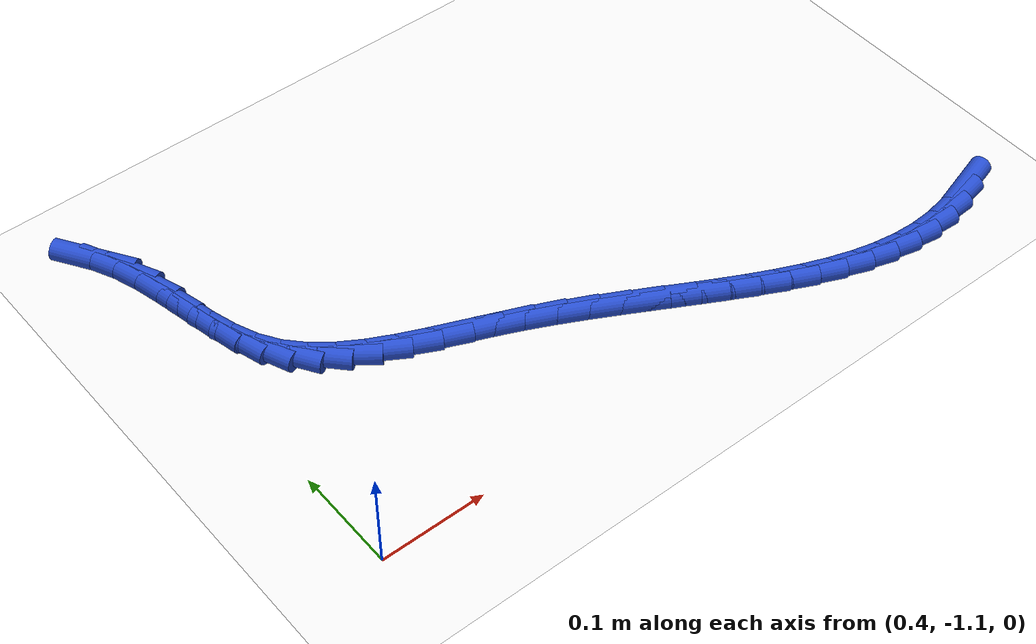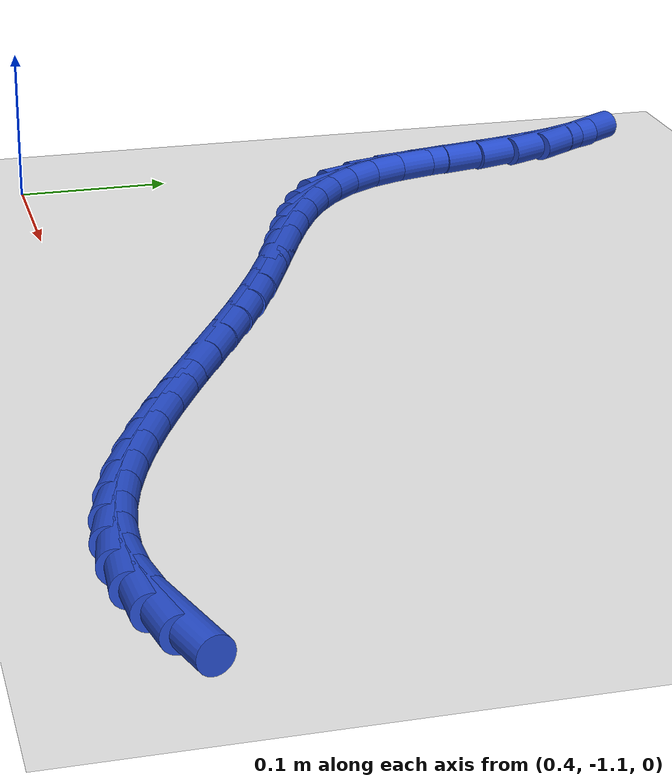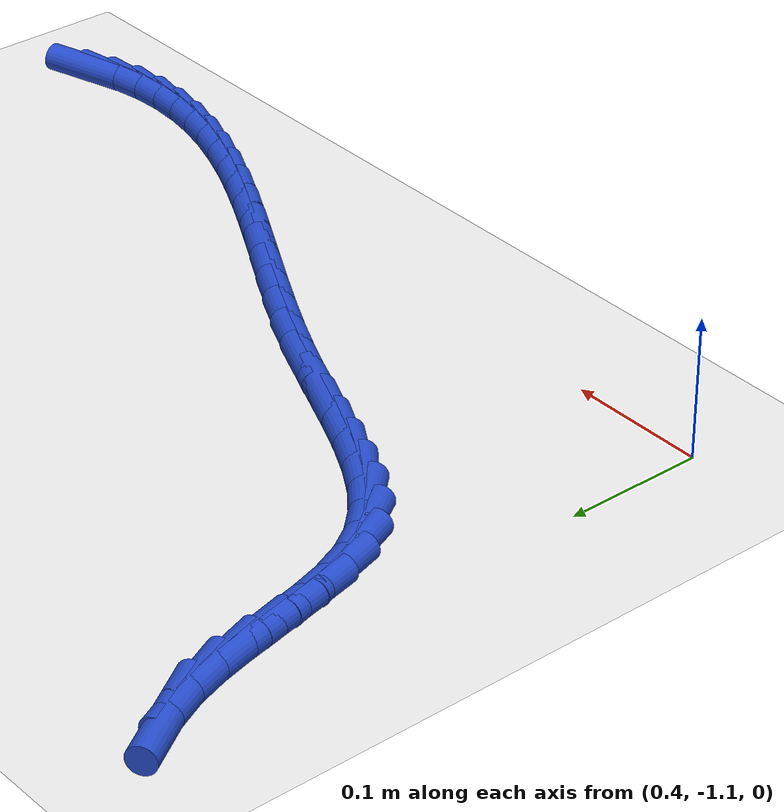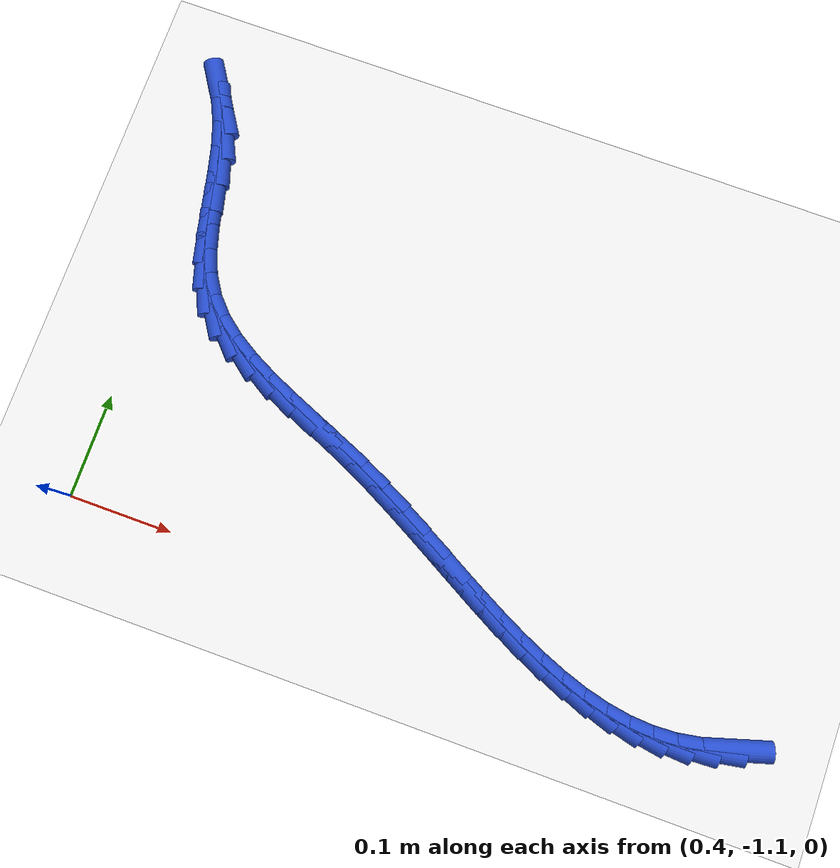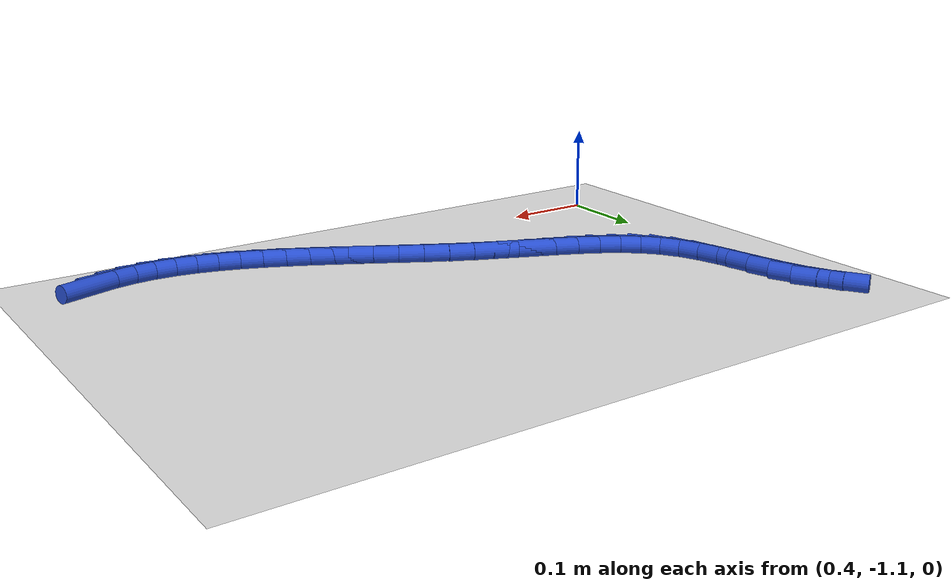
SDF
<sdf version="1.6">
 <world name="default">
  <model name="ground_plane">
   <static>1</static>
   <link name="link">
    <collision name="collision">
     <geometry><plane><normal>0 0 1</normal><size>100 100</size></plane></geometry>
     <surface><friction><ode><mu>100</mu><mu2>50</mu2></ode></friction></surface>
    </collision>
    <visual name="visual">
     <cast_shadows>0</cast_shadows>
     <geometry><plane><normal>0 0 1</normal><size>100 100</size></plane></geometry>
     <material>
      <script><uri>file://media/materials/scripts/gazebo.material</uri><name>Gazebo/WhiteGlow</name></script>
     </material>
    </visual>
   </link>
  </model>
  <model name="line">
   <link name="link_204">
    <pose>1.0400286253133786 -1.1115287016075437 0.01 0 1.57 0.2904122519090202</pose>
    <collision name="collision">
     <geometry><cylinder><radius>0.01</radius><length>0.08</length></cylinder></geometry>
    </collision>
    <visual name="visual">
     <material>
      <script><name>Gazebo/Blue</name><uri>file://media/materials/scripts/gazebo.material</uri></script>
     </material>
     <geometry><cylinder><radius>0.01</radius><length>0.08</length></cylinder></geometry>
    </visual>
   </link>
   <link name="link_205">
    <pose>1.0171203239072855 -1.118375117911908 0.01 0 1.57 0.16992816350773515</pose>
    <collision name="collision">
     <geometry><cylinder><radius>0.01</radius><length>0.08</length></cylinder></geometry>
    </collision>
    <visual name="visual">
     <material>
      <script><name>Gazebo/Blue</name><uri>file://media/materials/scripts/gazebo.material</uri></script>
     </material>
     <geometry><cylinder><radius>0.01</radius><length>0.08</length></cylinder></geometry>
    </visual>
   </link>
   <link name="link_206">
    <pose>0.9942237938850107 -1.1223037702427583 0.01 0 1.57 0.047855242656758994</pose>
    <collision name="collision">
     <geometry><cylinder><radius>0.01</radius><length>0.08</length></cylinder></geometry>
    </collision>
    <visual name="visual">
     <material>
      <script><name>Gazebo/Blue</name><uri>file://media/materials/scripts/gazebo.material</uri></script>
     </material>
     <geometry><cylinder><radius>0.01</radius><length>0.08</length></cylinder></geometry>
    </visual>
   </link>
   <link name="link_207">
    <pose>0.9713105374508896 -1.1234011275122238 0.01 0 1.57 -0.06459087238772512</pose>
    <collision name="collision">
     <geometry><cylinder><radius>0.01</radius><length>0.08</length></cylinder></geometry>
    </collision>
    <visual name="visual">
     <material>
      <script><name>Gazebo/Blue</name><uri>file://media/materials/scripts/gazebo.material</uri></script>
     </material>
     <geometry><cylinder><radius>0.01</radius><length>0.08</length></cylinder></geometry>
    </visual>
   </link>
   <link name="link_208">
    <pose>0.9483582009108459 -1.1219165509556943 0.01 0 1.57 -0.1643673129787537</pose>
    <collision name="collision">
     <geometry><cylinder><radius>0.01</radius><length>0.08</length></cylinder></geometry>
    </collision>
    <visual name="visual">
     <material>
      <script><name>Gazebo/Blue</name><uri>file://media/materials/scripts/gazebo.material</uri></script>
     </material>
     <geometry><cylinder><radius>0.01</radius><length>0.08</length></cylinder></geometry>
    </visual>
   </link>
   <link name="link_209">
    <pose>0.9253444305708003 -1.1180994018085582 0.01 0 1.57 -0.2501050923382631</pose>
    <collision name="collision">
     <geometry><cylinder><radius>0.01</radius><length>0.08</length></cylinder></geometry>
    </collision>
    <visual name="visual">
     <material>
      <script><name>Gazebo/Blue</name><uri>file://media/materials/scripts/gazebo.material</uri></script>
     </material>
     <geometry><cylinder><radius>0.01</radius><length>0.08</length></cylinder></geometry>
    </visual>
   </link>
   <link name="link_210">
    <pose>0.9022468727366767 -1.1121990413062053 0.01 0 1.57 -0.3217367571053745</pose>
    <collision name="collision">
     <geometry><cylinder><radius>0.01</radius><length>0.08</length></cylinder></geometry>
    </collision>
    <visual name="visual">
     <material>
      <script><name>Gazebo/Blue</name><uri>file://media/materials/scripts/gazebo.material</uri></script>
     </material>
     <geometry><cylinder><radius>0.01</radius><length>0.08</length></cylinder></geometry>
    </visual>
   </link>
   <link name="link_211">
    <pose>0.8790431737143961 -1.1044648306840246 0.01 0 1.57 -0.3799824220180409</pose>
    <collision name="collision">
     <geometry><cylinder><radius>0.01</radius><length>0.08</length></cylinder></geometry>
    </collision>
    <visual name="visual">
     <material>
      <script><name>Gazebo/Blue</name><uri>file://media/materials/scripts/gazebo.material</uri></script>
     </material>
     <geometry><cylinder><radius>0.01</radius><length>0.08</length></cylinder></geometry>
    </visual>
   </link>
   <link name="link_212">
    <pose>0.8557109798098821 -1.095146131177406 0.01 0 1.57 -0.4259114273021069</pose>
    <collision name="collision">
     <geometry><cylinder><radius>0.01</radius><length>0.08</length></cylinder></geometry>
    </collision>
    <visual name="visual">
     <material>
      <script><name>Gazebo/Blue</name><uri>file://media/materials/scripts/gazebo.material</uri></script>
     </material>
     <geometry><cylinder><radius>0.01</radius><length>0.08</length></cylinder></geometry>
    </visual>
   </link>
   <link name="link_213">
    <pose>0.8322279373290554 -1.0844923040217378 0.01 0 1.57 -0.46064928831892393</pose>
    <collision name="collision">
     <geometry><cylinder><radius>0.01</radius><length>0.08</length></cylinder></geometry>
    </collision>
    <visual name="visual">
     <material>
      <script><name>Gazebo/Blue</name><uri>file://media/materials/scripts/gazebo.material</uri></script>
     </material>
     <geometry><cylinder><radius>0.01</radius><length>0.08</length></cylinder></geometry>
    </visual>
   </link>
   <link name="link_214">
    <pose>0.8085716925778401 -1.0727527104524106 0.01 0 1.57 -0.48521369764802297</pose>
    <collision name="collision">
     <geometry><cylinder><radius>0.01</radius><length>0.08</length></cylinder></geometry>
    </collision>
    <visual name="visual">
     <material>
      <script><name>Gazebo/Blue</name><uri>file://media/materials/scripts/gazebo.material</uri></script>
     </material>
     <geometry><cylinder><radius>0.01</radius><length>0.08</length></cylinder></geometry>
    </visual>
   </link>
   <link name="link_215">
    <pose>0.7847198918621577 -1.0601767117048126 0.01 0 1.57 -0.5004382491909407</pose>
    <collision name="collision">
     <geometry><cylinder><radius>0.01</radius><length>0.08</length></cylinder></geometry>
    </collision>
    <visual name="visual">
     <material>
      <script><name>Gazebo/Blue</name><uri>file://media/materials/scripts/gazebo.material</uri></script>
     </material>
     <geometry><cylinder><radius>0.01</radius><length>0.08</length></cylinder></geometry>
    </visual>
   </link>
   <link name="link_216">
    <pose>0.7606501814879301 -1.0470136690143335 0.01 0 1.57 -0.5069471210436075</pose>
    <collision name="collision">
     <geometry><cylinder><radius>0.01</radius><length>0.08</length></cylinder></geometry>
    </collision>
    <visual name="visual">
     <material>
      <script><name>Gazebo/Blue</name><uri>file://media/materials/scripts/gazebo.material</uri></script>
     </material>
     <geometry><cylinder><radius>0.01</radius><length>0.08</length></cylinder></geometry>
    </visual>
   </link>
   <link name="link_217">
    <pose>0.7363402077610803 -1.0335129436163624 0.01 0 1.57 -0.505156151764255</pose>
    <collision name="collision">
     <geometry><cylinder><radius>0.01</radius><length>0.08</length></cylinder></geometry>
    </collision>
    <visual name="visual">
     <material>
      <script><name>Gazebo/Blue</name><uri>file://media/materials/scripts/gazebo.material</uri></script>
     </material>
     <geometry><cylinder><radius>0.01</radius><length>0.08</length></cylinder></geometry>
    </visual>
   </link>
   <link name="link_218">
    <pose>0.71176761698753 -1.0199238967462885 0.01 0 1.57 -0.49528661415707675</pose>
    <collision name="collision">
     <geometry><cylinder><radius>0.01</radius><length>0.08</length></cylinder></geometry>
    </collision>
    <visual name="visual">
     <material>
      <script><name>Gazebo/Blue</name><uri>file://media/materials/scripts/gazebo.material</uri></script>
     </material>
     <geometry><cylinder><radius>0.01</radius><length>0.08</length></cylinder></geometry>
    </visual>
   </link>
   <link name="link_219">
    <pose>0.6869100554732026 -1.006495889639502 0.01 0 1.57 -0.4773856916189949</pose>
    <collision name="collision">
     <geometry><cylinder><radius>0.01</radius><length>0.08</length></cylinder></geometry>
    </collision>
    <visual name="visual">
     <material>
      <script><name>Gazebo/Blue</name><uri>file://media/materials/scripts/gazebo.material</uri></script>
     </material>
     <geometry><cylinder><radius>0.01</radius><length>0.08</length></cylinder></geometry>
    </visual>
   </link>
   <link name="link_220">
    <pose>0.6617451695240189 -0.9934782835313908 0.01 0 1.57 -0.4513528290094932</pose>
    <collision name="collision">
     <geometry><cylinder><radius>0.01</radius><length>0.08</length></cylinder></geometry>
    </collision>
    <visual name="visual">
     <material>
      <script><name>Gazebo/Blue</name><uri>file://media/materials/scripts/gazebo.material</uri></script>
     </material>
     <geometry><cylinder><radius>0.01</radius><length>0.08</length></cylinder></geometry>
    </visual>
   </link>
   <link name="link_221">
    <pose>0.6362506054459027 -0.9811204396573452 0.01 0 1.57 -0.41877339861387536</pose>
    <collision name="collision">
     <geometry><cylinder><radius>0.01</radius><length>0.08</length></cylinder></geometry>
    </collision>
    <visual name="visual">
     <material>
      <script><name>Gazebo/Blue</name><uri>file://media/materials/scripts/gazebo.material</uri></script>
     </material>
     <geometry><cylinder><radius>0.01</radius><length>0.08</length></cylinder></geometry>
    </visual>
   </link>
   <link name="link_222">
    <pose>0.6104335897220701 -0.9696292309136382 0.01 0 1.57 -0.3976080313905084</pose>
    <collision name="collision">
     <geometry><cylinder><radius>0.01</radius><length>0.08</length></cylinder></geometry>
    </collision>
    <visual name="visual">
     <material>
      <script><name>Gazebo/Blue</name><uri>file://media/materials/scripts/gazebo.material</uri></script>
     </material>
     <geometry><cylinder><radius>0.01</radius><length>0.08</length></cylinder></geometry>
    </visual>
   </link>
   <link name="link_223">
    <pose>0.584601521354127 -0.9587803687593678 0.01 0 1.57 -0.3985832855608732</pose>
    <collision name="collision">
     <geometry><cylinder><radius>0.01</radius><length>0.08</length></cylinder></geometry>
    </collision>
    <visual name="visual">
     <material>
      <script><name>Gazebo/Blue</name><uri>file://media/materials/scripts/gazebo.material</uri></script>
     </material>
     <geometry><cylinder><radius>0.01</radius><length>0.08</length></cylinder></geometry>
    </visual>
   </link>
   <link name="link_224">
    <pose>0.5592365459802453 -0.9480985622921579 0.01 0 1.57 -0.4230941390594683</pose>
    <collision name="collision">
     <geometry><cylinder><radius>0.01</radius><length>0.08</length></cylinder></geometry>
    </collision>
    <visual name="visual">
     <material>
      <script><name>Gazebo/Blue</name><uri>file://media/materials/scripts/gazebo.material</uri></script>
     </material>
     <geometry><cylinder><radius>0.01</radius><length>0.08</length></cylinder></geometry>
    </visual>
   </link>
   <link name="link_225">
    <pose>0.5348229788029509 -0.9371054042934266 0.01 0 1.57 -0.4738309066690713</pose>
    <collision name="collision">
     <geometry><cylinder><radius>0.01</radius><length>0.08</length></cylinder></geometry>
    </collision>
    <visual name="visual">
     <material>
      <script><name>Gazebo/Blue</name><uri>file://media/materials/scripts/gazebo.material</uri></script>
     </material>
     <geometry><cylinder><radius>0.01</radius><length>0.08</length></cylinder></geometry>
    </visual>
   </link>
   <link name="link_226">
    <pose>0.5118451350247681 -0.9253224875445916 0.01 0 1.57 -0.5548325514441047</pose>
    <collision name="collision">
     <geometry><cylinder><radius>0.01</radius><length>0.08</length></cylinder></geometry>
    </collision>
    <visual name="visual">
     <material>
      <script><name>Gazebo/Blue</name><uri>file://media/materials/scripts/gazebo.material</uri></script>
     </material>
     <geometry><cylinder><radius>0.01</radius><length>0.08</length></cylinder></geometry>
    </visual>
   </link>
   <link name="link_227">
    <pose>0.49078732984822043 -0.9122714048270695 0.01 0 1.57 -0.6706380224296258</pose>
    <collision name="collision">
     <geometry><cylinder><radius>0.01</radius><length>0.08</length></cylinder></geometry>
    </collision>
    <visual name="visual">
     <material>
      <script><name>Gazebo/Blue</name><uri>file://media/materials/scripts/gazebo.material</uri></script>
     </material>
     <geometry><cylinder><radius>0.01</radius><length>0.08</length></cylinder></geometry>
    </visual>
   </link>
   <link name="link_228">
    <pose>0.4721338784758342 -0.8974737489222794 0.01 0 1.57 -0.8237432799369151</pose>
    <collision name="collision">
     <geometry><cylinder><radius>0.01</radius><length>0.08</length></cylinder></geometry>
    </collision>
    <visual name="visual">
     <material>
      <script><name>Gazebo/Blue</name><uri>file://media/materials/scripts/gazebo.material</uri></script>
     </material>
     <geometry><cylinder><radius>0.01</radius><length>0.08</length></cylinder></geometry>
    </visual>
   </link>
   <link name="link_229">
    <pose>0.4563690961101326 -0.8804511126116376 0.01 0 1.57 -1.0088836695293288</pose>
    <collision name="collision">
     <geometry><cylinder><radius>0.01</radius><length>0.08</length></cylinder></geometry>
    </collision>
    <visual name="visual">
     <material>
      <script><name>Gazebo/Blue</name><uri>file://media/materials/scripts/gazebo.material</uri></script>
     </material>
     <geometry><cylinder><radius>0.01</radius><length>0.08</length></cylinder></geometry>
    </visual>
   </link>
   <link name="link_230">
    <pose>0.44395892623453465 -0.8607404535245479 0.01 0 1.57 -1.179144948725023</pose>
    <collision name="collision">
     <geometry><cylinder><radius>0.01</radius><length>0.08</length></cylinder></geometry>
    </collision>
    <visual name="visual">
     <material>
      <script><name>Gazebo/Blue</name><uri>file://media/materials/scripts/gazebo.material</uri></script>
     </material>
     <geometry><cylinder><radius>0.01</radius><length>0.08</length></cylinder></geometry>
    </visual>
   </link>
   <link name="link_231">
    <pose>0.43473606082289384 -0.8384083374954919 0.01 0 1.57 -1.2903244408730394</pose>
    <collision name="collision">
     <geometry><cylinder><radius>0.01</radius><length>0.08</length></cylinder></geometry>
    </collision>
    <visual name="visual">
     <material>
      <script><name>Gazebo/Blue</name><uri>file://media/materials/scripts/gazebo.material</uri></script>
     </material>
     <geometry><cylinder><radius>0.01</radius><length>0.08</length></cylinder></geometry>
    </visual>
   </link>
   <link name="link_232">
    <pose>0.4277545633397119 -0.814172521932975 0.01 0 1.57 -1.3486192055205926</pose>
    <collision name="collision">
     <geometry><cylinder><radius>0.01</radius><length>0.08</length></cylinder></geometry>
    </collision>
    <visual name="visual">
     <material>
      <script><name>Gazebo/Blue</name><uri>file://media/materials/scripts/gazebo.material</uri></script>
     </material>
     <geometry><cylinder><radius>0.01</radius><length>0.08</length></cylinder></geometry>
    </visual>
   </link>
   <link name="link_233">
    <pose>0.4220206602878388 -0.7887907718049193 0.01 0 1.57 -1.361263383849755</pose>
    <collision name="collision">
     <geometry><cylinder><radius>0.01</radius><length>0.08</length></cylinder></geometry>
    </collision>
    <visual name="visual">
     <material>
      <script><name>Gazebo/Blue</name><uri>file://media/materials/scripts/gazebo.material</uri></script>
     </material>
     <geometry><cylinder><radius>0.01</radius><length>0.08</length></cylinder></geometry>
    </visual>
   </link>
   <link name="link_234">
    <pose>0.4165405781701248 -0.7630208520792492 0.01 0 1.57 -1.3306421412229021</pose>
    <collision name="collision">
     <geometry><cylinder><radius>0.01</radius><length>0.08</length></cylinder></geometry>
    </collision>
    <visual name="visual">
     <material>
      <script><name>Gazebo/Blue</name><uri>file://media/materials/scripts/gazebo.material</uri></script>
     </material>
     <geometry><cylinder><radius>0.01</radius><length>0.08</length></cylinder></geometry>
    </visual>
   </link>
   <link name="link_235">
    <pose>0.41032054348942054 -0.7376205277238882 0.01 0 1.57 -1.2541425250195988</pose>
    <collision name="collision">
     <geometry><cylinder><radius>0.01</radius><length>0.08</length></cylinder></geometry>
    </collision>
    <visual name="visual">
     <material>
      <script><name>Gazebo/Blue</name><uri>file://media/materials/scripts/gazebo.material</uri></script>
     </material>
     <geometry><cylinder><radius>0.01</radius><length>0.08</length></cylinder></geometry>
    </visual>
   </link>
   <link name="link_236">
    <pose>0.40236678274857574 -0.7133475637067587 0.01 0 1.57 -1.1325239233816298</pose>
    <collision name="collision">
     <geometry><cylinder><radius>0.01</radius><length>0.08</length></cylinder></geometry>
    </collision>
    <visual name="visual">
     <material>
      <script><name>Gazebo/Blue</name><uri>file://media/materials/scripts/gazebo.material</uri></script>
     </material>
     <geometry><cylinder><radius>0.01</radius><length>0.08</length></cylinder></geometry>
    </visual>
   </link>
   <link name="link_237">
    <pose>0.39182518813707706 -0.6908550737428563 0.01 0 1.57 -1.005406988962832</pose>
    <collision name="collision">
     <geometry><cylinder><radius>0.01</radius><length>0.08</length></cylinder></geometry>
    </collision>
    <visual name="visual">
     <material>
      <script><name>Gazebo/Blue</name><uri>file://media/materials/scripts/gazebo.material</uri></script>
     </material>
     <geometry><cylinder><radius>0.01</radius><length>0.08</length></cylinder></geometry>
    </visual>
   </link>
  </model>
 </world>
</sdf>
